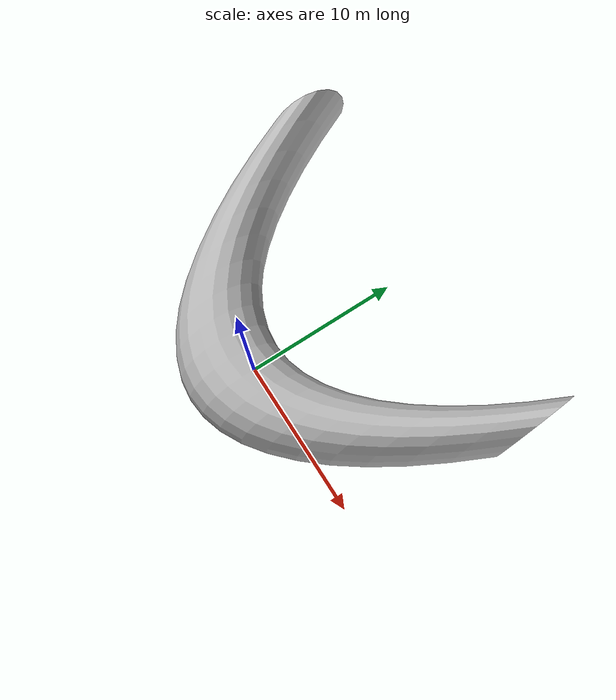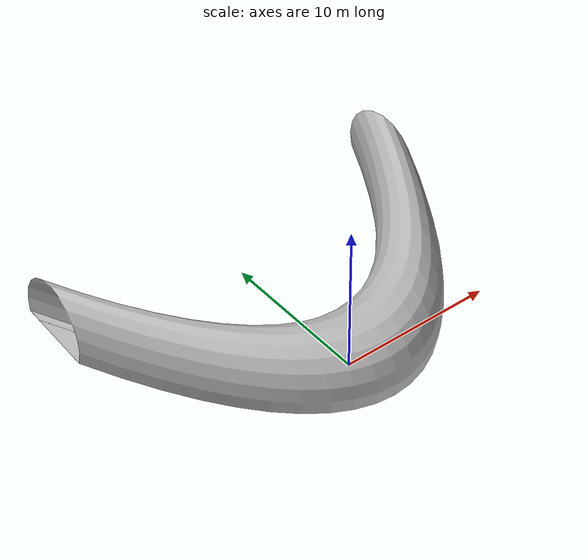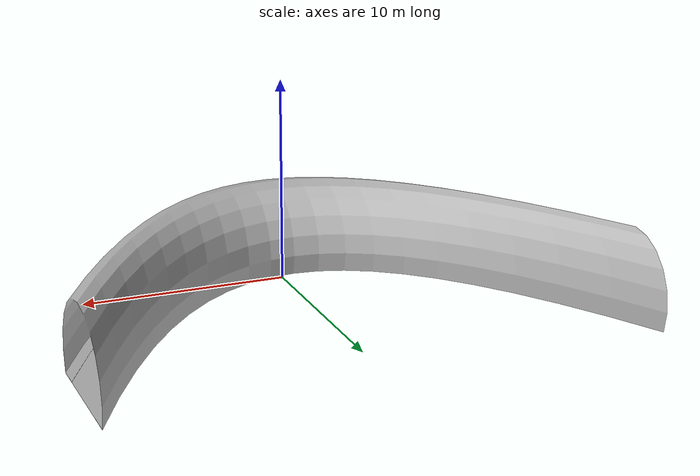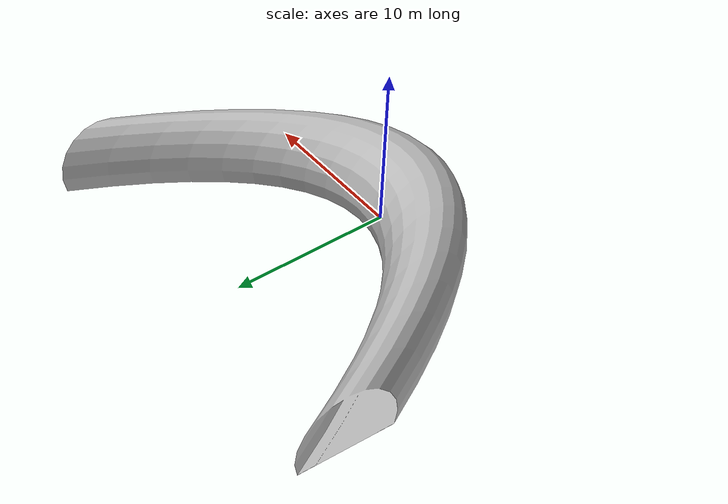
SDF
<?xml version="1.0"?>
<sdf version="1.6">
  <model name="tunnel">
    <static>true</static>

    <link name="link">
      <visual name="visual">
        <geometry>
          <mesh>
            <uri>model://tunnel/meshes/tunnel.stl</uri>
            <scale>5 30 30</scale>
          </mesh>
        </geometry>
      </visual>

      <collision name="collision">
        <geometry>
          <mesh>
            <uri>model://tunnel/meshes/tunnel.stl</uri>
            <scale>1 1 1</scale>
          </mesh>
        </geometry>
      </collision>
    </link>
  </model>
</sdf>
